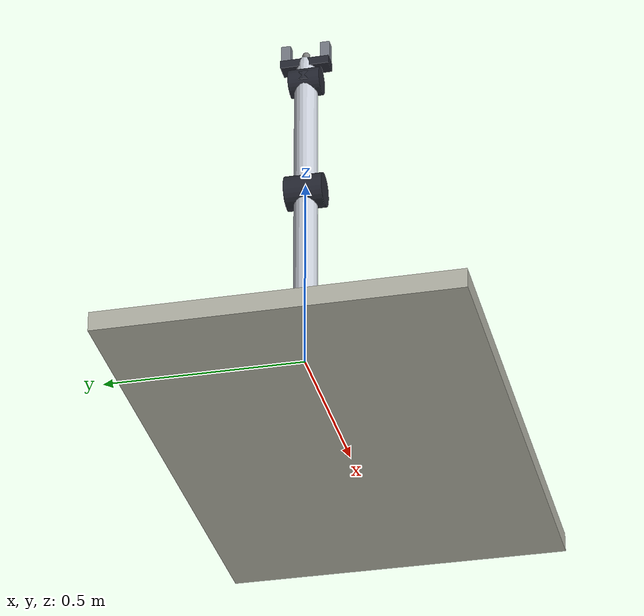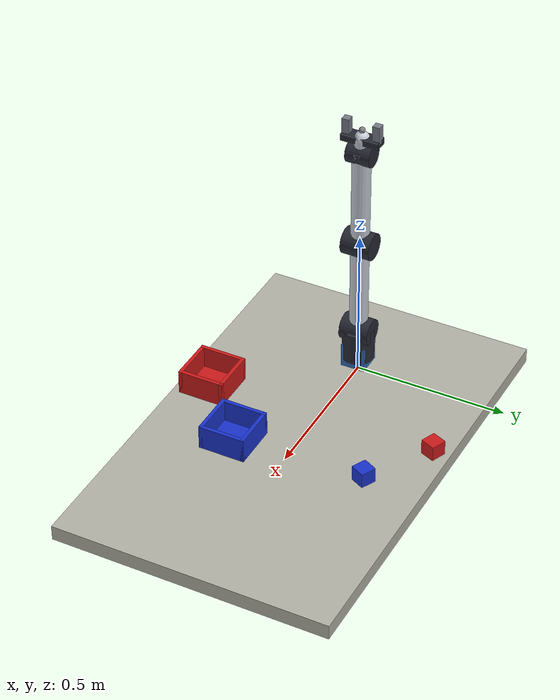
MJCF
<mujoco model="built_manipulator_7seg">
  <compiler angle="radian" autolimits="true"/>
  <option timestep="0.002" gravity="0 0 -9.81"/>
  <visual>
    <headlight ambient="0.45 0.45 0.48" diffuse="0.65 0.65 0.68" specular="0.22 0.22 0.22"/>
    <quality shadowsize="4096"/>
    <map znear="0.01" zfar="60"/>
  </visual>
  <default>
    <joint damping="0.8" armature="0.01"/>
    <geom friction="1 0.1 0.01"/>
  </default>
  <asset>
    <material name="mat_red" rgba="0.8 0.1 0.1 1"/>
    <material name="mat_blue" rgba="0.1 0.2 0.8 1"/>
    <material name="mat_gray" rgba="0.5 0.5 0.5 1"/>
    <material name="mat_link" rgba="0.35 0.35 0.38 1"/>
    <material name="mat_body" rgba="0.84 0.86 0.89 1" specular="0.35" shininess="0.45" reflectance="0.05"/>
    <material name="mat_joint" rgba="0.15 0.16 0.20 1" specular="0.6" shininess="0.7" reflectance="0.1"/>
    <material name="mat_accent" rgba="0.92 0.47 0.13 1" specular="0.45" shininess="0.55"/>
    <material name="mat_ee" rgba="0.22 0.24 0.29 1" specular="0.5" shininess="0.6"/>
    <material name="mat_alu" rgba="0.78 0.80 0.84 1" specular="0.55" shininess="0.5" reflectance="0.12"/>
    <material name="mat_steel" rgba="0.34 0.36 0.40 1" specular="0.7" shininess="0.7" reflectance="0.18"/>
    <material name="mat_cf" rgba="0.11 0.12 0.14 1" specular="0.45" shininess="0.4" reflectance="0.06"/>
    <material name="mat_ti" rgba="0.60 0.60 0.65 1" specular="0.5" shininess="0.55" reflectance="0.1"/>
    <material name="mat_shell" rgba="0.20 0.42 0.72 1" specular="0.4" shininess="0.5" reflectance="0.05"/>
    <material name="mat_metal" rgba="0.47 0.49 0.53 1" specular="0.78" shininess="0.78" reflectance="0.22"/>
    <material name="mat_rubber" rgba="0.13 0.13 0.15 1" specular="0.15" shininess="0.15"/>
  </asset>
  <worldbody>
    <light name="key" pos="1.6 -1.1 3.0" dir="-0.45 0.32 -1" diffuse="0.55 0.55 0.58" specular="0.25 0.25 0.25"/>
    <light name="fill" pos="-2.0 1.6 2.2" dir="0.5 -0.42 -1" diffuse="0.22 0.22 0.26"/>
    <geom name="table" type="box" size="0.7 0.45 0.025" pos="0.4 0 0" rgba="0.7 0.7 0.65 1"/>
    <body name="base" pos="0.00000 0.00000 0.02500">
      <geom name="base_geom" type="box" pos="0 0 0.04000" size="0.04000 0.04000 0.04000" mass="1.00000" material="mat_shell"/>
      <body name="shoulder" pos="0.00000 0.00000 0.08000">
        <joint name="shoulder_joint" type="hinge" axis="0.0000 0.0000 1.0000" range="-3.1400 3.1400"/>
        <geom name="shoulder_geom" type="capsule" fromto="0 0 0 0 0 0.05000" size="0.03500" mass="0.40000" material="mat_alu"/>
        <geom name="shoulder_motor" type="cylinder" fromto="-0.00000 -0.00000 -0.05500 0.00000 0.00000 0.05500" size="0.05075" material="mat_joint" mass="0" contype="0" conaffinity="0"/>
        <body name="j1" pos="0.00000 0.00000 0.05000">
          <joint name="j1_joint" type="hinge" axis="0.0000 1.0000 0.0000" range="-3.1400 3.1400"/>
          <geom name="j1_geom" type="capsule" fromto="0 0 0 0 0 0.32500" size="0.03000" mass="0.35000" material="mat_alu"/>
          <geom name="j1_motor" type="cylinder" fromto="-0.00000 -0.04800 -0.00000 0.00000 0.04800 0.00000" size="0.04350" material="mat_joint" mass="0" contype="0" conaffinity="0"/>
          <geom name="j1_collar" type="cylinder" fromto="0 0 0.31300 0 0 0.33700" size="0.03660" material="mat_joint" mass="0" contype="0" conaffinity="0"/>
          <body name="j2" pos="0.00000 0.00000 0.32500">
            <joint name="j2_joint" type="hinge" axis="0.0000 1.0000 0.0000" range="-3.1400 3.1400"/>
            <geom name="j2_geom" type="capsule" fromto="0 0 0 0 0 0.32500" size="0.03000" mass="0.30000" material="mat_alu"/>
            <geom name="j2_motor" type="cylinder" fromto="-0.00000 -0.04800 -0.00000 0.00000 0.04800 0.00000" size="0.04350" material="mat_joint" mass="0" contype="0" conaffinity="0"/>
            <geom name="j2_collar" type="cylinder" fromto="0 0 0.31300 0 0 0.33700" size="0.03660" material="mat_joint" mass="0" contype="0" conaffinity="0"/>
            <body name="wrist" pos="0.00000 0.00000 0.32500">
              <joint name="wrist_joint" type="hinge" axis="0.0000 1.0000 0.0000" range="-6.2800 6.2800"/>
              <geom name="wrist_geom" type="capsule" fromto="0 0 0 0 0 0.05000" size="0.02500" mass="0.20000" material="mat_alu"/>
              <geom name="wrist_motor" type="cylinder" fromto="-0.00000 -0.04000 -0.00000 0.00000 0.04000 0.00000" size="0.03625" material="mat_joint" mass="0" contype="0" conaffinity="0"/>
              <site name="ee_site" pos="0 0 0.05000" size="0.01"/>
              <site name="grasp_site" pos="0 0 0.08000" size="0.01"/>
              <geom name="wrist_palm" type="box" pos="0 0 0.05000" size="0.02160 0.06200 0.01080" material="mat_joint" mass="0" contype="0" conaffinity="0"/>
              <body name="finger_l" pos="0.00000 0.05000 0.05000">
                <joint name="finger_l_joint" type="slide" axis="0.0000 -1.0000 0.0000" range="0.0000 0.0450"/>
                <geom name="finger_l_geom" type="box" pos="0 0 0.03000" size="0.01200 0.01200 0.03000" mass="0.03000" material="mat_metal"/>
              </body>

              <body name="finger_r" pos="0.00000 -0.05000 0.05000">
                <joint name="finger_r_joint" type="slide" axis="0.0000 1.0000 0.0000" range="0.0000 0.0450"/>
                <geom name="finger_r_geom" type="box" pos="0 0 0.03000" size="0.01200 0.01200 0.03000" mass="0.03000" material="mat_metal"/>
              </body>

            </body>

          </body>

        </body>

      </body>

    </body>
    <body name="obj_red_block" pos="0.3004 0.398 0.051" euler="0 0 2.744">
      <freejoint name="free_red_block" />
      <geom name="red_block" type="box" size="0.025 0.025 0.025" mass="0.0407" friction="1.0 0.1 0.01" material="mat_red" />
    </body>
    <body name="obj_blue_block" pos="0.5059 0.2661 0.051" euler="0 0 -0.467">
      <freejoint name="free_blue_block" />
      <geom name="blue_block" type="box" size="0.025 0.025 0.025" mass="0.043" friction="1.0 0.1 0.01" material="mat_blue" />
    </body>
    <geom name="red_bin" type="box" size="0.07 0.07 0.004" pos="0.3153 -0.3491 0.029" material="mat_red" />
    <geom name="red_bin_wall_px" type="box" size="0.006 0.07600000000000001 0.04" pos="0.3853 -0.3491 0.065" material="mat_red" />
    <geom name="red_bin_wall_nx" type="box" size="0.006 0.07600000000000001 0.04" pos="0.2453 -0.3491 0.065" material="mat_red" />
    <geom name="red_bin_wall_py" type="box" size="0.07600000000000001 0.006 0.04" pos="0.3153 -0.2791 0.065" material="mat_red" />
    <geom name="red_bin_wall_ny" type="box" size="0.07600000000000001 0.006 0.04" pos="0.3153 -0.4191 0.065" material="mat_red" />
    <geom name="blue_bin" type="box" size="0.07 0.07 0.004" pos="0.5191 -0.1652 0.029" material="mat_blue" />
    <geom name="blue_bin_wall_px" type="box" size="0.006 0.07600000000000001 0.04" pos="0.5891 -0.1652 0.065" material="mat_blue" />
    <geom name="blue_bin_wall_nx" type="box" size="0.006 0.07600000000000001 0.04" pos="0.4491 -0.1652 0.065" material="mat_blue" />
    <geom name="blue_bin_wall_py" type="box" size="0.07600000000000001 0.006 0.04" pos="0.5191 -0.0952 0.065" material="mat_blue" />
    <geom name="blue_bin_wall_ny" type="box" size="0.07600000000000001 0.006 0.04" pos="0.5191 -0.2352 0.065" material="mat_blue" />
  </worldbody>
  <actuator>
    <motor name="shoulder_motor" joint="shoulder_joint" gear="1" forcerange="-16.80 16.80"/>
    <motor name="j1_motor" joint="j1_joint" gear="1" forcerange="-15.10 15.10"/>
    <motor name="j2_motor" joint="j2_joint" gear="1" forcerange="-12.60 12.60"/>
    <motor name="wrist_motor" joint="wrist_joint" gear="1" forcerange="-10.10 10.10"/>
    <motor name="finger_l_motor" joint="finger_l_joint" gear="1" forcerange="-8.00 8.00"/>
    <motor name="finger_r_motor" joint="finger_r_joint" gear="1" forcerange="-8.00 8.00"/>
  </actuator>
</mujoco>
